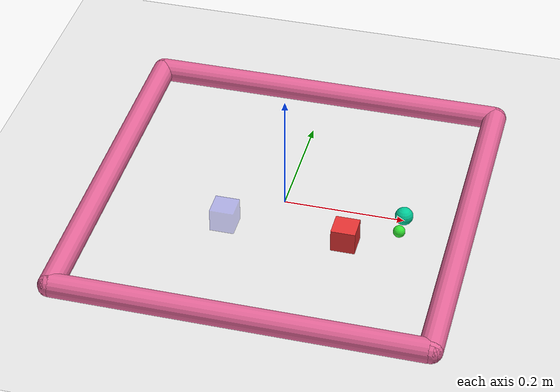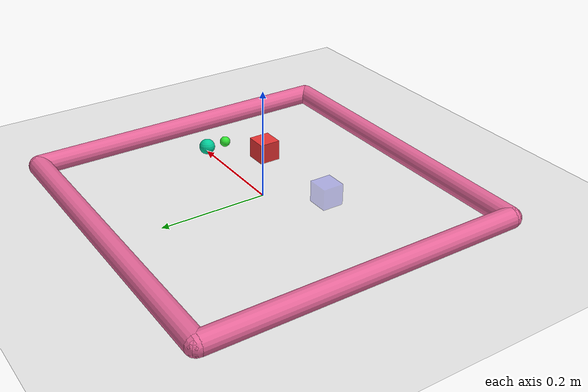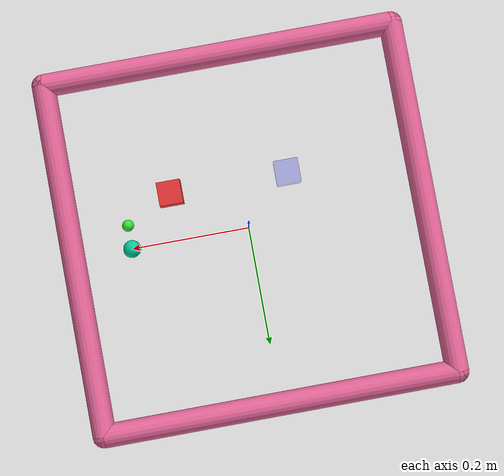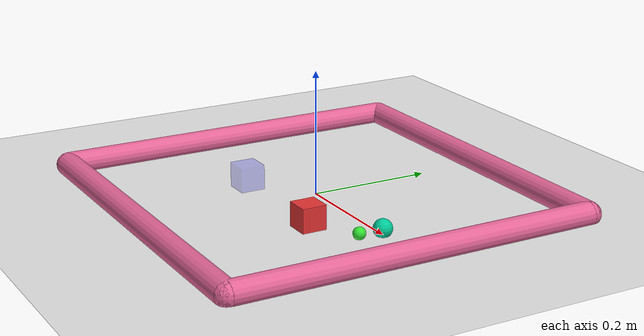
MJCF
<mujoco model="reacher">
	<compiler angle="radian" inertiafromgeom="true"/>
	<default>
		<joint type="hinge" axis="0 0 1" limited="true" range="-.29 .29" damping="1"/>
		<motor gear="10" ctrlrange="-0.7 0.7" ctrllimited="true"/>
  </default>
	<option gravity="0 0 -9.81" integrator="RK4" timestep="0.01"/>
	<worldbody>
		<!-- Arena -->
		<geom conaffinity="1" name="ground" pos="0 0 0" rgba="0.9 0.9 0.9 1" size="1 1 10" type="plane"/>
		<geom conaffinity="0" fromto="-.3 -.3 .01 .3 -.3 .01" name="sideS" rgba="0.9 0.4 0.6 1" size=".02" type="capsule"/>
		<geom conaffinity="0" fromto=" .3 -.3 .01 .3  .3 .01" name="sideE" rgba="0.9 0.4 0.6 1" size=".02" type="capsule"/>
		<geom conaffinity="0" fromto="-.3  .3 .01 .3  .3 .01" name="sideN" rgba="0.9 0.4 0.6 1" size=".02" type="capsule"/>
		<geom conaffinity="0" fromto="-.3 -.3 .01 -.3 .3 .01" name="sideW" rgba="0.9 0.4 0.6 1" size=".02" type="capsule"/>
		<!-- Arm -->
		<body name="fingertip" pos="0.2 0 .01">
			<joint name="root_x" type="slide"  pos="0 0 0" axis="1 0 0" ref="0.2"/>
			<joint name="root_y" type="slide"  pos="0 0 0" axis="0 1 0" />
			<geom conaffinity="1" contype="1" name="fingertip" pos="0 0 0" rgba="0.0 0.8 0.6 1" size=".015" type="sphere"/>
		</body>
		<!-- Target -->
		<body name="dest" pos="-0.08 -0.08 0.02">
      		<geom conaffinity="0" contype="0" name="dest" pos="0 0 0" rgba="0.2 0.2 0.9 0.3" size=".02 .02 .02" type="box"/>
    	</body>

		<body name="target" pos="0.12 -0.08 .018">
			<joint armature="0" axis="1 0 0" damping="0" limited="true" name="target_x" pos="0 0 0" range="-.27 .27" ref="0.12" stiffness="0" type="slide"/>
			<joint armature="0" axis="0 1 0" damping="0" limited="true" name="target_y" pos="0 0 0" range="-.27 .27" ref="-.08" stiffness="0" type="slide"/>
			<geom conaffinity="0" contype="1" name="target" pos="0 0 0" rgba="0.9 0.2 0.2 1" size=".02 .02 .02" mass="0.01" type="box"/>
		</body>

		<body name="highlevel" pos="0.2 -0.04 0.01">
      		<geom conaffinity="0" contype="0" name="highlevel" pos="0 0 0" rgba="0.2 0.9 0.2 1" size=".01" type="sphere"/>
    	</body>

	</worldbody>
	<tendon>
		<fixed name="t1">
		<joint joint="root_x" coef="1"/>
		<joint joint="root_y" coef="0"/>
		</fixed>
		<fixed name="t2">
		<joint joint="root_x" coef="0"/>
		<joint joint="root_y" coef="1"/>
		</fixed>
	</tendon>

	<actuator>
		<motor name="t1" tendon="t1"/>
		<motor name="t2" tendon="t2"/>
	</actuator>
</mujoco>
